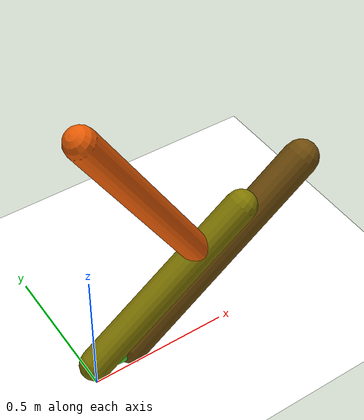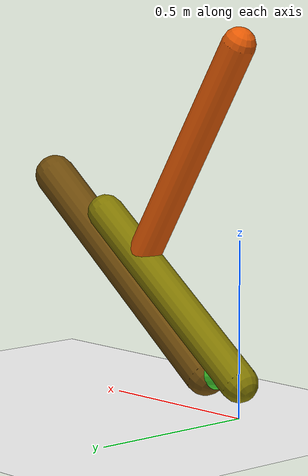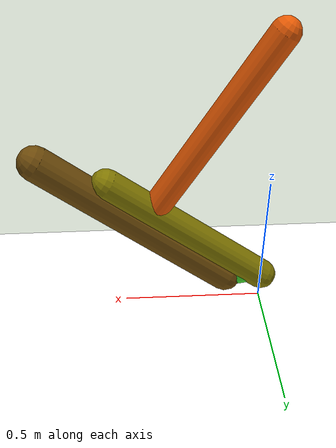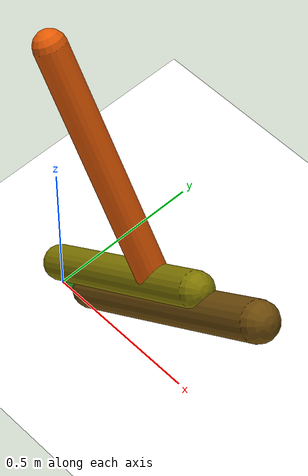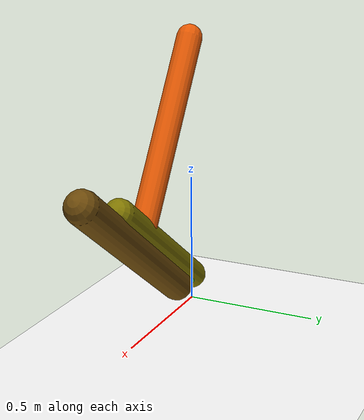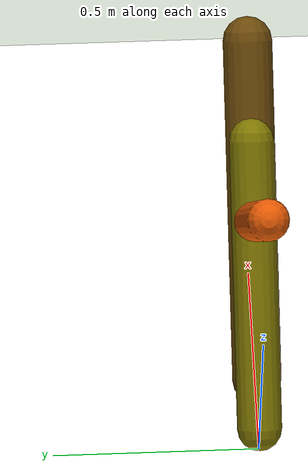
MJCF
<mujoco model="morphology">
  <option timestep="0.01"/>
  <default>
    <default class="/"/>
    <default class="0/"/>
    <default class="0/1/"/>
    <default class="0/1/2/"/>
    <default class="0/3/"/>
  </default>
  <asset>
    <texture name="texplane" type="2d" builtin="checker" rgb1="0.10000000000000001 0.20000000000000001 0.29999999999999999" rgb2="0.20000000000000001 0.29999999999999999 0.40000000000000002" width="300" height="300"/>
    <material name="MatPlane" class="/" texture="texplane" texrepeat="20 20" specular="1" shininess="1" reflectance="0.5"/>
  </asset>
  <worldbody>
    <light name="//unnamed_light_0" class="/" directional="true" pos="0 0 1.5" dir="0 0 -1.3" cutoff="100" exponent="1" diffuse="1 1 1" specular="0.10000000000000001 0.10000000000000001 0.10000000000000001"/>
    <geom name="ground" class="/" type="plane" size="15 15 0.5" material="MatPlane" rgba="1 1 1 1"/>
    <site name="body" class="/" size="9.9999999999999995e-07 9.9999999999999995e-07 9.9999999999999995e-07" pos="0 0 0.10000000000000001"/>
    <body pos="0 0 0.10000000000000001" name="0/">
      <joint name="0/rootx/" class="/" type="slide" axis="1 0 0" limited="false" stiffness="0" armature="0" damping="0"/>
      <joint name="0/rootz/" class="/" type="slide" axis="0 0 1" limited="false" stiffness="0" armature="0" damping="0"/>
      <joint name="0/rooty/" class="/" type="hinge" axis="0 1 0" limited="false" stiffness="0" armature="0" damping="0"/>
      <geom name="0/geom" class="0/" type="capsule" contype="1" conaffinity="1" condim="3" size="0.054115630591238938" rgba="0.50918615388742616 0.47172982292091858 0.0066232815273444823 1" friction="0.59999999999999998 0.10000000000000001 0.10000000000000001" fromto="0 0 0 0.55641451694611499 0 0.42136257690277734"/>
      <site name="0/end0" class="0/" size="0.0050000000000000001" pos="0.55641451694611499 0 0.42136257690277734"/>
      <site name="0/attach1" class="0/" size="9.9999999999999995e-07 9.9999999999999995e-07 9.9999999999999995e-07" pos="0.028984309367499267 0 0.021949289446773254"/>
      <body pos="0.028984309367499267 0 0.021949289446773254" name="0/1/">
        <joint name="0/1/joint/" class="0/" type="hinge" axis="0 1 0" limited="true" range="-42.511460359043994 42.511460359043994"/>
        <geom name="0/1/geom" class="0/1/" type="capsule" contype="1" conaffinity="1" condim="3" size="0.042856354402056193" rgba="0.26624064884291421 0.84027948508797468 0.18560930237346807 1" friction="0.59999999999999998 0.10000000000000001 0.10000000000000001" fromto="0 0 0 0.1269114805593814 0 -0.020805141784515646"/>
        <site name="0/1/end1" class="0/1/" size="0.0050000000000000001" pos="0.1269114805593814 0 -0.020805141784515646"/>
        <site name="0/1/attach2" class="0/1/" size="9.9999999999999995e-07 9.9999999999999995e-07 9.9999999999999995e-07" pos="0.10612544383623369 0 -0.017397597886539509"/>
        <body pos="0.10612544383623369 0 -0.017397597886539509" name="0/1/2/">
          <joint name="0/1/2/joint/" class="0/1/" type="hinge" axis="0 1 0" limited="true" range="-32.454527707562164 32.454527707562164"/>
          <geom name="0/1/2/geom" class="0/1/2/" type="capsule" contype="1" conaffinity="1" condim="3" size="0.059629163829035721" rgba="0.43094839001740537 0.2915769870633228 0.040773347311314323 1" friction="0.59999999999999998 0.10000000000000001 0.10000000000000001" fromto="0 0 0 0.64964802210948092 0 0.50786464379089247"/>
          <site name="0/1/2/end2" class="0/1/2/" size="0.0050000000000000001" pos="0.64964802210948092 0 0.50786464379089247"/>
        </body>
      </body>
      <site name="0/attach3" class="0/" size="9.9999999999999995e-07 9.9999999999999995e-07 9.9999999999999995e-07" pos="0.40092832346167923 0 0.30361571523031228"/>
      <body pos="0.40092832346167923 0 0.30361571523031228" name="0/3/">
        <joint name="0/3/joint/" class="0/" type="hinge" axis="0 1 0" limited="true" range="-59.777953882755298 59.777953882755298"/>
        <geom name="0/3/geom" class="0/3/" type="capsule" contype="1" conaffinity="1" condim="3" size="0.048237370525305162" rgba="0.91138301430739488 0.35615445406461665 0.016457355457713208 1" friction="0.59999999999999998 0.10000000000000001 0.10000000000000001" fromto="0 0 0 -0.39200062987308598 0 0.63596353206445788"/>
        <site name="0/3/end3" class="0/3/" size="0.0050000000000000001" pos="-0.39200062987308598 0 0.63596353206445788"/>
      </body>
      <camera name="0/side" class="0/" mode="trackcom" pos="0.40000000000000002 -4 0.20000000000000001" quat="0.70699999999999996 0.70699999999999996 0 0"/>
    </body>
  </worldbody>
  <actuator>
    <motor name="0/1/motor" class="0/1/" ctrllimited="true" ctrlrange="-1 1" gear="84" joint="0/1/joint/"/>
    <motor name="0/1/2/motor" class="0/1/2/" ctrllimited="true" ctrlrange="-1 1" gear="84" joint="0/1/2/joint/"/>
    <motor name="0/3/motor" class="0/3/" ctrllimited="true" ctrlrange="-1 1" gear="59" joint="0/3/joint/"/>
  </actuator>
  <sensor>
    <subtreelinvel name="velocity" body="0/"/>
  </sensor>
</mujoco>
